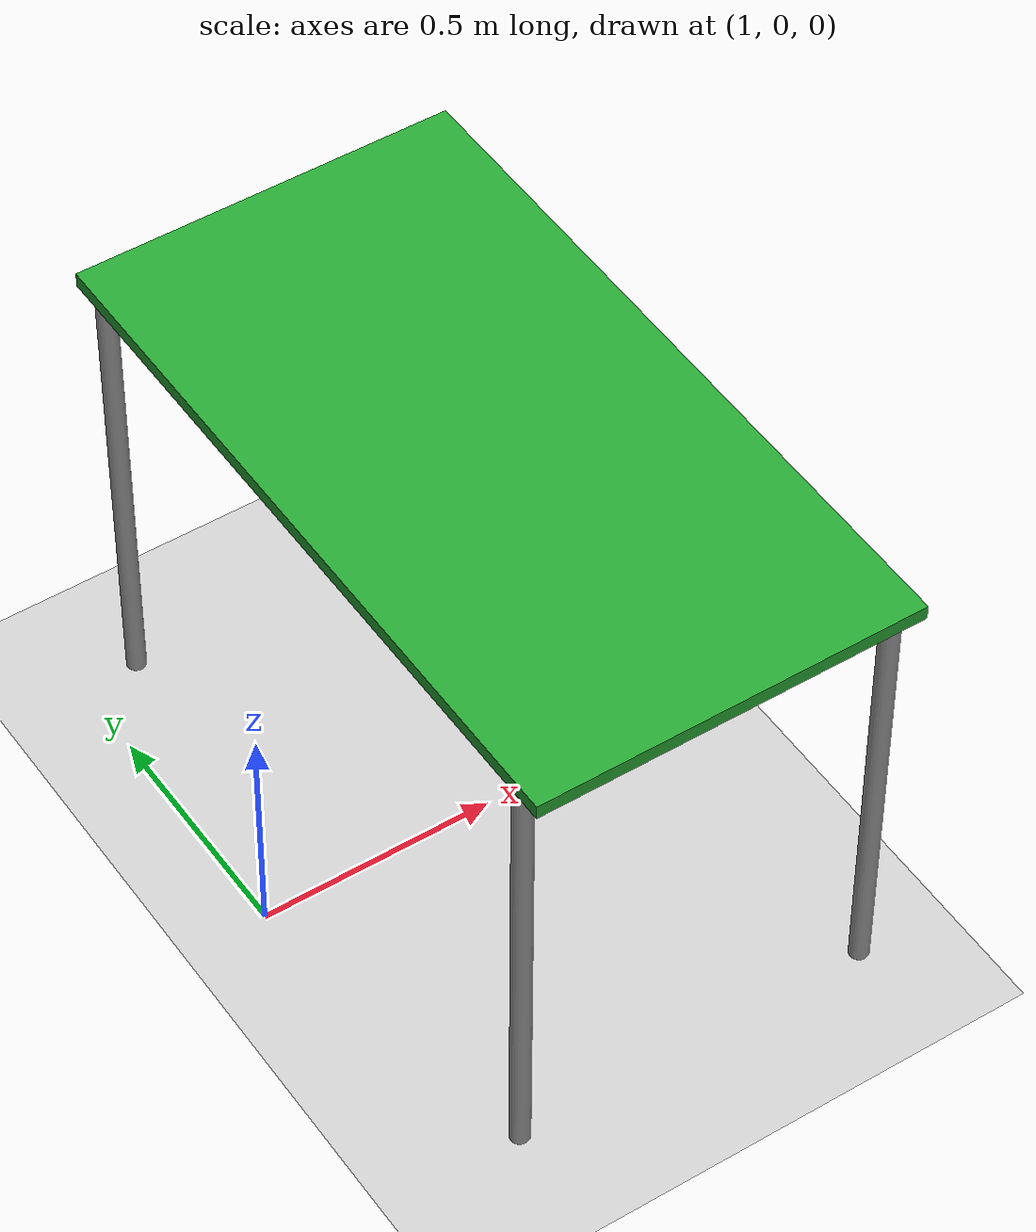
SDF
<?xml version="1.0" ?>
<sdf version="1.6">
  <world name="default">
    <!-- A global light source -->
    <include>
      <uri>model://sun</uri>
    </include>
    <include>
      <uri>model://ground_plane</uri>
    </include>
    <!-- Wooden Table -->
    <include>
      <uri>model://tableAV</uri>
      <name>Wooden_Table</name>
      <pose>1.5 0 0 0 0 1.57</pose>
      <static>true</static>
    </include>
    <!-- Kinect -->
    <!-- Cordless Drill -->
  </world>
</sdf>

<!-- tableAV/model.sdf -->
<sdf version="1.5">
  <model name="tableAV">
    <static>true</static>
    <link name="link">
      <collision name="surface">
        <pose>0 0 1.0 0 0 0</pose>
        <geometry>
          <box>
            <size>1.5 0.8 0.03</size>
          </box>
        </geometry>
        <surface>
          <contact>
            <ode>
              <max_vel>0.1</max_vel>
              <min_depth>0.001</min_depth>
            </ode>
          </contact>
          <friction>
            <ode>
              <mu>1.0</mu>
              <mu2>1.0</mu2>
            </ode>
          </friction>
        </surface>
      </collision>
      <visual name="visual1">
        <pose>0 0 1.0 0 0 0</pose>
        <geometry>
          <box>
            <size>1.5 0.8 0.03</size>
          </box>
        </geometry>
        <material>
          <script>
            <uri>file://media/materials/scripts/gazebo.material</uri>
            <name>Gazebo/Green</name>
          </script>
        </material>
      </visual>
      <collision name="front_left_leg">
        <pose>0.68 0.38 0.5 0 0 0</pose>
        <geometry>
          <cylinder>
            <radius>0.02</radius>
            <length>1.0</length>
          </cylinder>
        </geometry>
      </collision>
      <visual name="front_left_leg">
        <pose>0.68 0.38 0.5 0 0 0</pose>
        <geometry>
          <cylinder>
            <radius>0.02</radius>
            <length>1.0</length>
          </cylinder>
        </geometry>
        <material>
          <script>
            <uri>file://media/materials/scripts/gazebo.material</uri>
            <name>Gazebo/Grey</name>
          </script>
        </material>
      </visual>
      <collision name="front_right_leg">
        <pose>0.68 -0.38 0.5 0 0 0</pose>
        <geometry>
          <cylinder>
            <radius>0.02</radius>
            <length>1.0</length>
          </cylinder>
        </geometry>
      </collision>
      <visual name="front_right_leg">
        <pose>0.68 -0.38 0.5 0 0 0</pose>
        <geometry>
          <cylinder>
            <radius>0.02</radius>
            <length>1.0</length>
          </cylinder>
        </geometry>
        <material>
          <script>
            <uri>file://media/materials/scripts/gazebo.material</uri>
            <name>Gazebo/Grey</name>
          </script>
        </material>
      </visual>
      <collision name="back_right_leg">
        <pose>-0.68 -0.38 0.5 0 0 0</pose>
        <geometry>
          <cylinder>
            <radius>0.02</radius>
            <length>1.0</length>
          </cylinder>
        </geometry>
      </collision>
      <visual name="back_right_leg">
        <pose>-0.68 -0.38 0.5 0 0 0</pose>
        <geometry>
          <cylinder>
            <radius>0.02</radius>
            <length>1.0</length>
          </cylinder>
        </geometry>
        <material>
          <script>
            <uri>file://media/materials/scripts/gazebo.material</uri>
            <name>Gazebo/Grey</name>
          </script>
        </material>
      </visual>
      <collision name="back_left_leg">
        <pose>-0.68 0.38 0.5 0 0 0</pose>
        <geometry>
          <cylinder>
            <radius>0.02</radius>
            <length>1.0</length>
          </cylinder>
        </geometry>
      </collision>
      <visual name="back_left_leg">
        <pose>-0.68 0.38 0.5 0 0 0</pose>
        <geometry>
          <cylinder>
            <radius>0.02</radius>
            <length>1.0</length>
          </cylinder>
        </geometry>
        <material>
          <script>
            <uri>file://media/materials/scripts/gazebo.material</uri>
            <name>Gazebo/Grey</name>
          </script>
        </material>
      </visual>
    </link>
  </model>
</sdf>
